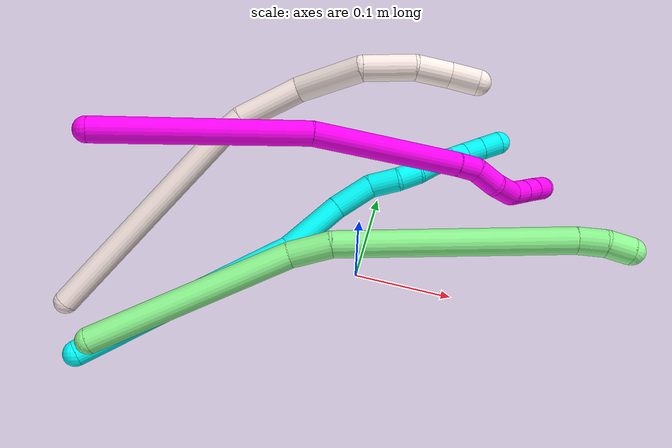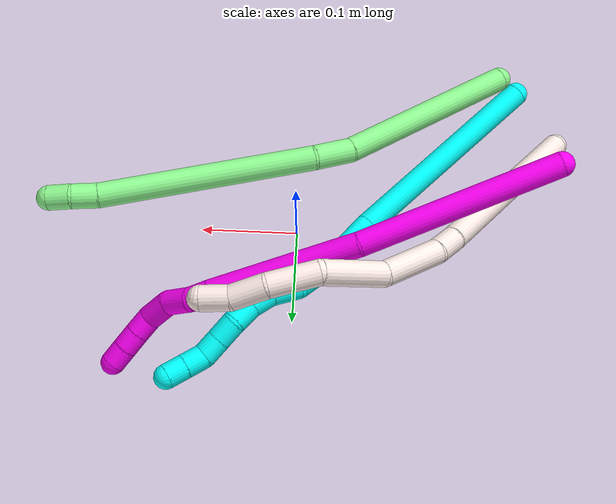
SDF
<sdf version="1.7">
 <world name="default">
  <model name="3">
   <static>0</static>
   <link name="3">
    <collision name="collision-cylinder-e_1_1_4">
     <pose>0.063315 0.076719 0.054609 -0.952186 0.591928 -0.311913</pose>
     <geometry><cylinder><radius>0.0125</radius><length>0.226952</length></cylinder></geometry>
     <surface>
      <friction><ode><mu>1.16</mu><mu2>1.16</mu2><slip1>0</slip1><slip2>0</slip2></ode></friction>
      <contact><ode><kp>1e+06</kp><kd>1</kd><max_vel>0</max_vel><min_depth>0.001</min_depth></ode></contact>
     </surface>
    </collision>
    <visual name="visual-cylinder-e_1_1_4">
     <pose>0.063315 0.076719 0.054609 -0.952186 0.591928 -0.311913</pose>
     <geometry><cylinder><radius>0.0125</radius><length>0.226952</length></cylinder></geometry>
     <material><ambient>0.003922 1 0.996078 1</ambient></material>
    </visual>
    <collision name="collision-cylinder-e_2_4_5">
     <pose>0.146193 0.169407 0.131098 -0.630515 0.62547 -0.210132</pose>
     <geometry><cylinder><radius>0.0125</radius><length>0.066824</length></cylinder></geometry>
     <surface>
      <friction><ode><mu>1.16</mu><mu2>1.16</mu2><slip1>0</slip1><slip2>0</slip2></ode></friction>
      <contact><ode><kp>1e+06</kp><kd>1</kd><max_vel>0</max_vel><min_depth>0.001</min_depth></ode></contact>
     </surface>
    </collision>
    <visual name="visual-cylinder-e_2_4_5">
     <pose>0.146193 0.169407 0.131098 -0.630515 0.62547 -0.210132</pose>
     <geometry><cylinder><radius>0.0125</radius><length>0.066824</length></cylinder></geometry>
     <material><ambient>0.003922 1 0.996078 1</ambient></material>
    </visual>
    <collision name="collision-cylinder-e_3_5_6">
     <pose>0.180475 0.195434 0.164416 -0.721158 0.76829 -0.302511</pose>
     <geometry><cylinder><radius>0.0125</radius><length>0.042366</length></cylinder></geometry>
     <surface>
      <friction><ode><mu>1.16</mu><mu2>1.16</mu2><slip1>0</slip1><slip2>0</slip2></ode></friction>
      <contact><ode><kp>1e+06</kp><kd>1</kd><max_vel>0</max_vel><min_depth>0.001</min_depth></ode></contact>
     </surface>
    </collision>
    <visual name="visual-cylinder-e_3_5_6">
     <pose>0.180475 0.195434 0.164416 -0.721158 0.76829 -0.302511</pose>
     <geometry><cylinder><radius>0.0125</radius><length>0.042366</length></cylinder></geometry>
     <material><ambient>0.003922 1 0.996078 1</ambient></material>
    </visual>
    <collision name="collision-cylinder-e_4_6_7">
     <pose>0.208153 0.212789 0.178913 -1.17419 1.02265 -0.714612</pose>
     <geometry><cylinder><radius>0.0125</radius><length>0.030365</length></cylinder></geometry>
     <surface>
      <friction><ode><mu>1.16</mu><mu2>1.16</mu2><slip1>0</slip1><slip2>0</slip2></ode></friction>
      <contact><ode><kp>1e+06</kp><kd>1</kd><max_vel>0</max_vel><min_depth>0.001</min_depth></ode></contact>
     </surface>
    </collision>
    <visual name="visual-cylinder-e_4_6_7">
     <pose>0.208153 0.212789 0.178913 -1.17419 1.02265 -0.714612</pose>
     <geometry><cylinder><radius>0.0125</radius><length>0.030365</length></cylinder></geometry>
     <material><ambient>0.003922 1 0.996078 1</ambient></material>
    </visual>
    <collision name="collision-cylinder-e_5_7_8">
     <pose>0.228908 0.227432 0.18612 -1.05644 0.745933 -0.448951</pose>
     <geometry><cylinder><radius>0.0125</radius><length>0.022977</length></cylinder></geometry>
     <surface>
      <friction><ode><mu>1.16</mu><mu2>1.16</mu2><slip1>0</slip1><slip2>0</slip2></ode></friction>
      <contact><ode><kp>1e+06</kp><kd>1</kd><max_vel>0</max_vel><min_depth>0.001</min_depth></ode></contact>
     </surface>
    </collision>
    <visual name="visual-cylinder-e_5_7_8">
     <pose>0.228908 0.227432 0.18612 -1.05644 0.745933 -0.448951</pose>
     <geometry><cylinder><radius>0.0125</radius><length>0.022977</length></cylinder></geometry>
     <material><ambient>0.003922 1 0.996078 1</ambient></material>
    </visual>
    <collision name="collision-cylinder-e_6_8_9">
     <pose>0.242688 0.242869 0.196288 -0.931381 0.535579 -0.274054</pose>
     <geometry><cylinder><radius>0.0125</radius><length>0.023448</length></cylinder></geometry>
     <surface>
      <friction><ode><mu>1.16</mu><mu2>1.16</mu2><slip1>0</slip1><slip2>0</slip2></ode></friction>
      <contact><ode><kp>1e+06</kp><kd>1</kd><max_vel>0</max_vel><min_depth>0.001</min_depth></ode></contact>
     </surface>
    </collision>
    <visual name="visual-cylinder-e_6_8_9">
     <pose>0.242688 0.242869 0.196288 -0.931381 0.535579 -0.274054</pose>
     <geometry><cylinder><radius>0.0125</radius><length>0.023448</length></cylinder></geometry>
     <material><ambient>0.003922 1 0.996078 1</ambient></material>
    </visual>
    <collision name="collision-cylinder-e_7_9_10">
     <pose>0.252381 0.261151 0.206353 -1.19261 0.326224 -0.22248</pose>
     <geometry><cylinder><radius>0.0125</radius><length>0.023154</length></cylinder></geometry>
     <surface>
      <friction><ode><mu>1.16</mu><mu2>1.16</mu2><slip1>0</slip1><slip2>0</slip2></ode></friction>
      <contact><ode><kp>1e+06</kp><kd>1</kd><max_vel>0</max_vel><min_depth>0.001</min_depth></ode></contact>
     </surface>
    </collision>
    <visual name="visual-cylinder-e_7_9_10">
     <pose>0.252381 0.261151 0.206353 -1.19261 0.326224 -0.22248</pose>
     <geometry><cylinder><radius>0.0125</radius><length>0.023154</length></cylinder></geometry>
     <material><ambient>0.003922 1 0.996078 1</ambient></material>
    </visual>
    <collision name="collision-cylinder-e_8_10_11">
     <pose>0.260038 0.280184 0.214869 -1.10309 0.379118 -0.234994</pose>
     <geometry><cylinder><radius>0.0125</radius><length>0.021326</length></cylinder></geometry>
     <surface>
      <friction><ode><mu>1.16</mu><mu2>1.16</mu2><slip1>0</slip1><slip2>0</slip2></ode></friction>
      <contact><ode><kp>1e+06</kp><kd>1</kd><max_vel>0</max_vel><min_depth>0.001</min_depth></ode></contact>
     </surface>
    </collision>
    <visual name="visual-cylinder-e_8_10_11">
     <pose>0.260038 0.280184 0.214869 -1.10309 0.379118 -0.234994</pose>
     <geometry><cylinder><radius>0.0125</radius><length>0.021326</length></cylinder></geometry>
     <material><ambient>0.003922 1 0.996078 1</ambient></material>
    </visual>
    <collision name="collision-cylinder-e_9_11_12">
     <pose>0.271767 0.295766 0.22308 -1.06353 0.790086 -0.481089</pose>
     <geometry><cylinder><radius>0.0125</radius><length>0.021911</length></cylinder></geometry>
     <surface>
      <friction><ode><mu>1.16</mu><mu2>1.16</mu2><slip1>0</slip1><slip2>0</slip2></ode></friction>
      <contact><ode><kp>1e+06</kp><kd>1</kd><max_vel>0</max_vel><min_depth>0.001</min_depth></ode></contact>
     </surface>
    </collision>
    <visual name="visual-cylinder-e_9_11_12">
     <pose>0.271767 0.295766 0.22308 -1.06353 0.790086 -0.481089</pose>
     <geometry><cylinder><radius>0.0125</radius><length>0.021911</length></cylinder></geometry>
     <material><ambient>0.003922 1 0.996078 1</ambient></material>
    </visual>
    <collision name="collision-cylinder-e_10_12_2">
     <pose>0.286908 0.308884 0.230298 -1.07231 0.791977 -0.486994</pose>
     <geometry><cylinder><radius>0.0125</radius><length>0.020677</length></cylinder></geometry>
     <surface>
      <friction><ode><mu>1.16</mu><mu2>1.16</mu2><slip1>0</slip1><slip2>0</slip2></ode></friction>
      <contact><ode><kp>1e+06</kp><kd>1</kd><max_vel>0</max_vel><min_depth>0.001</min_depth></ode></contact>
     </surface>
    </collision>
    <visual name="visual-cylinder-e_10_12_2">
     <pose>0.286908 0.308884 0.230298 -1.07231 0.791977 -0.486994</pose>
     <geometry><cylinder><radius>0.0125</radius><length>0.020677</length></cylinder></geometry>
     <material><ambient>0.003922 1 0.996078 1</ambient></material>
    </visual>
    <collision name="collision-sphere-2">
     <pose>0.294267 0.315262 0.23377 0 -0 0</pose>
     <geometry><sphere><radius>0.0125</radius></sphere></geometry>
     <surface>
      <friction><ode><mu>1.16</mu><mu2>1.16</mu2><slip1>0</slip1><slip2>0</slip2></ode></friction>
      <contact><ode><kp>1e+06</kp><kd>1</kd><max_vel>0</max_vel><min_depth>0.001</min_depth></ode></contact>
     </surface>
    </collision>
    <visual name="visual-sphere-2">
     <pose>0.294267 0.315262 0.23377 0 -0 0</pose>
     <geometry><sphere><radius>0.0125</radius></sphere></geometry>
     <material><ambient>0.003922 1 0.996078 1</ambient></material>
    </visual>
    <collision name="collision-sphere-12">
     <pose>0.27955 0.302505 0.226826 0 -0 0</pose>
     <geometry><sphere><radius>0.0125</radius></sphere></geometry>
     <surface>
      <friction><ode><mu>1.16</mu><mu2>1.16</mu2><slip1>0</slip1><slip2>0</slip2></ode></friction>
      <contact><ode><kp>1e+06</kp><kd>1</kd><max_vel>0</max_vel><min_depth>0.001</min_depth></ode></contact>
     </surface>
    </collision>
    <visual name="visual-sphere-12">
     <pose>0.27955 0.302505 0.226826 0 -0 0</pose>
     <geometry><sphere><radius>0.0125</radius></sphere></geometry>
     <material><ambient>0.003922 1 0.996078 1</ambient></material>
    </visual>
    <collision name="collision-sphere-11">
     <pose>0.263984 0.289027 0.219335 0 -0 0</pose>
     <geometry><sphere><radius>0.0125</radius></sphere></geometry>
     <surface>
      <friction><ode><mu>1.16</mu><mu2>1.16</mu2><slip1>0</slip1><slip2>0</slip2></ode></friction>
      <contact><ode><kp>1e+06</kp><kd>1</kd><max_vel>0</max_vel><min_depth>0.001</min_depth></ode></contact>
     </surface>
    </collision>
    <visual name="visual-sphere-11">
     <pose>0.263984 0.289027 0.219335 0 -0 0</pose>
     <geometry><sphere><radius>0.0125</radius></sphere></geometry>
     <material><ambient>0.003922 1 0.996078 1</ambient></material>
    </visual>
    <collision name="collision-sphere-10">
     <pose>0.256091 0.271342 0.210403 0 -0 0</pose>
     <geometry><sphere><radius>0.0125</radius></sphere></geometry>
     <surface>
      <friction><ode><mu>1.16</mu><mu2>1.16</mu2><slip1>0</slip1><slip2>0</slip2></ode></friction>
      <contact><ode><kp>1e+06</kp><kd>1</kd><max_vel>0</max_vel><min_depth>0.001</min_depth></ode></contact>
     </surface>
    </collision>
    <visual name="visual-sphere-10">
     <pose>0.256091 0.271342 0.210403 0 -0 0</pose>
     <geometry><sphere><radius>0.0125</radius></sphere></geometry>
     <material><ambient>0.003922 1 0.996078 1</ambient></material>
    </visual>
    <collision name="collision-sphere-9">
     <pose>0.248671 0.250959 0.202304 0 -0 0</pose>
     <geometry><sphere><radius>0.0125</radius></sphere></geometry>
     <surface>
      <friction><ode><mu>1.16</mu><mu2>1.16</mu2><slip1>0</slip1><slip2>0</slip2></ode></friction>
      <contact><ode><kp>1e+06</kp><kd>1</kd><max_vel>0</max_vel><min_depth>0.001</min_depth></ode></contact>
     </surface>
    </collision>
    <visual name="visual-sphere-9">
     <pose>0.248671 0.250959 0.202304 0 -0 0</pose>
     <geometry><sphere><radius>0.0125</radius></sphere></geometry>
     <material><ambient>0.003922 1 0.996078 1</ambient></material>
    </visual>
    <collision name="collision-sphere-4">
     <pose>0.126631 0.153438 0.109219 0 -0 0</pose>
     <geometry><sphere><radius>0.0125</radius></sphere></geometry>
     <surface>
      <friction><ode><mu>1.16</mu><mu2>1.16</mu2><slip1>0</slip1><slip2>0</slip2></ode></friction>
      <contact><ode><kp>1e+06</kp><kd>1</kd><max_vel>0</max_vel><min_depth>0.001</min_depth></ode></contact>
     </surface>
    </collision>
    <visual name="visual-sphere-4">
     <pose>0.126631 0.153438 0.109219 0 -0 0</pose>
     <geometry><sphere><radius>0.0125</radius></sphere></geometry>
     <material><ambient>0.003922 1 0.996078 1</ambient></material>
    </visual>
    <collision name="collision-sphere-1">
     <geometry><sphere><radius>0.0125</radius></sphere></geometry>
     <surface>
      <friction><ode><mu>1.16</mu><mu2>1.16</mu2><slip1>0</slip1><slip2>0</slip2></ode></friction>
      <contact><ode><kp>1e+06</kp><kd>1</kd><max_vel>0</max_vel><min_depth>0.001</min_depth></ode></contact>
     </surface>
    </collision>
    <visual name="visual-sphere-1">
     <geometry><sphere><radius>0.0125</radius></sphere></geometry>
     <material><ambient>0.003922 1 0.996078 1</ambient></material>
    </visual>
    <collision name="collision-sphere-8">
     <pose>0.236705 0.234778 0.190272 0 -0 0</pose>
     <geometry><sphere><radius>0.0125</radius></sphere></geometry>
     <surface>
      <friction><ode><mu>1.16</mu><mu2>1.16</mu2><slip1>0</slip1><slip2>0</slip2></ode></friction>
      <contact><ode><kp>1e+06</kp><kd>1</kd><max_vel>0</max_vel><min_depth>0.001</min_depth></ode></contact>
     </surface>
    </collision>
    <visual name="visual-sphere-8">
     <pose>0.236705 0.234778 0.190272 0 -0 0</pose>
     <geometry><sphere><radius>0.0125</radius></sphere></geometry>
     <material><ambient>0.003922 1 0.996078 1</ambient></material>
    </visual>
    <collision name="collision-sphere-5">
     <pose>0.165755 0.185376 0.152976 0 -0 0</pose>
     <geometry><sphere><radius>0.0125</radius></sphere></geometry>
     <surface>
      <friction><ode><mu>1.16</mu><mu2>1.16</mu2><slip1>0</slip1><slip2>0</slip2></ode></friction>
      <contact><ode><kp>1e+06</kp><kd>1</kd><max_vel>0</max_vel><min_depth>0.001</min_depth></ode></contact>
     </surface>
    </collision>
    <visual name="visual-sphere-5">
     <pose>0.165755 0.185376 0.152976 0 -0 0</pose>
     <geometry><sphere><radius>0.0125</radius></sphere></geometry>
     <material><ambient>0.003922 1 0.996078 1</ambient></material>
    </visual>
    <collision name="collision-sphere-6">
     <pose>0.195195 0.205491 0.175857 0 -0 0</pose>
     <geometry><sphere><radius>0.0125</radius></sphere></geometry>
     <surface>
      <friction><ode><mu>1.16</mu><mu2>1.16</mu2><slip1>0</slip1><slip2>0</slip2></ode></friction>
      <contact><ode><kp>1e+06</kp><kd>1</kd><max_vel>0</max_vel><min_depth>0.001</min_depth></ode></contact>
     </surface>
    </collision>
    <visual name="visual-sphere-6">
     <pose>0.195195 0.205491 0.175857 0 -0 0</pose>
     <geometry><sphere><radius>0.0125</radius></sphere></geometry>
     <material><ambient>0.003922 1 0.996078 1</ambient></material>
    </visual>
    <collision name="collision-sphere-7">
     <pose>0.221111 0.220086 0.181969 0 -0 0</pose>
     <geometry><sphere><radius>0.0125</radius></sphere></geometry>
     <surface>
      <friction><ode><mu>1.16</mu><mu2>1.16</mu2><slip1>0</slip1><slip2>0</slip2></ode></friction>
      <contact><ode><kp>1e+06</kp><kd>1</kd><max_vel>0</max_vel><min_depth>0.001</min_depth></ode></contact>
     </surface>
    </collision>
    <visual name="visual-sphere-7">
     <pose>0.221111 0.220086 0.181969 0 -0 0</pose>
     <geometry><sphere><radius>0.0125</radius></sphere></geometry>
     <material><ambient>0.003922 1 0.996078 1</ambient></material>
    </visual>
    <inertial>
     <pose>0.144663 0.158565 0.122883 0 -0 0</pose>
     <mass>0.5</mass>
     <inertia>
      <ixx>0.000575</ixx>
      <ixy>0</ixy>
      <ixz>0</ixz>
      <iyy>0.000484</iyy>
      <iyz>0</iyz>
      <izz>-0.001252</izz>
     </inertia>
    </inertial>
   </link>
   <pose>-0.22955 -0.165625 0.027473 -1.13043 -0.614636 0.000532</pose>
  </model>
  <model name="10">
   <static>0</static>
   <link name="10">
    <collision name="collision-cylinder-e_1_1_4">
     <pose>0.097477 0.034975 -0.003605 -1.67352 1.22462 -1.32297</pose>
     <geometry><cylinder><radius>0.0125</radius><length>0.20725</length></cylinder></geometry>
     <surface>
      <friction><ode><mu>1.16</mu><mu2>1.16</mu2><slip1>0</slip1><slip2>0</slip2></ode></friction>
      <contact><ode><kp>1e+06</kp><kd>1</kd><max_vel>0</max_vel><min_depth>0.001</min_depth></ode></contact>
     </surface>
    </collision>
    <visual name="visual-cylinder-e_1_1_4">
     <pose>0.097477 0.034975 -0.003605 -1.67352 1.22462 -1.32297</pose>
     <geometry><cylinder><radius>0.0125</radius><length>0.20725</length></cylinder></geometry>
     <material><ambient>1 0 0.964706 1</ambient></material>
    </visual>
    <collision name="collision-cylinder-e_2_4_5">
     <pose>0.26724 0.09354 0.00425 -1.11853 1.22275 -0.826925</pose>
     <geometry><cylinder><radius>0.0125</radius><length>0.153792</length></cylinder></geometry>
     <surface>
      <friction><ode><mu>1.16</mu><mu2>1.16</mu2><slip1>0</slip1><slip2>0</slip2></ode></friction>
      <contact><ode><kp>1e+06</kp><kd>1</kd><max_vel>0</max_vel><min_depth>0.001</min_depth></ode></contact>
     </surface>
    </collision>
    <visual name="visual-cylinder-e_2_4_5">
     <pose>0.26724 0.09354 0.00425 -1.11853 1.22275 -0.826925</pose>
     <geometry><cylinder><radius>0.0125</radius><length>0.153792</length></cylinder></geometry>
     <material><ambient>1 0 0.964706 1</ambient></material>
    </visual>
    <collision name="collision-cylinder-e_3_5_6">
     <pose>0.350157 0.119619 0.017878 -0.854841 1.26973 -0.647434</pose>
     <geometry><cylinder><radius>0.0125</radius><length>0.022265</length></cylinder></geometry>
     <surface>
      <friction><ode><mu>1.16</mu><mu2>1.16</mu2><slip1>0</slip1><slip2>0</slip2></ode></friction>
      <contact><ode><kp>1e+06</kp><kd>1</kd><max_vel>0</max_vel><min_depth>0.001</min_depth></ode></contact>
     </surface>
    </collision>
    <visual name="visual-cylinder-e_3_5_6">
     <pose>0.350157 0.119619 0.017878 -0.854841 1.26973 -0.647434</pose>
     <geometry><cylinder><radius>0.0125</radius><length>0.022265</length></cylinder></geometry>
     <material><ambient>1 0 0.964706 1</ambient></material>
    </visual>
    <collision name="collision-cylinder-e_4_6_7">
     <pose>0.372203 0.124599 0.027405 -0.326085 0.973134 -0.173602</pose>
     <geometry><cylinder><radius>0.0125</radius><length>0.027617</length></cylinder></geometry>
     <surface>
      <friction><ode><mu>1.16</mu><mu2>1.16</mu2><slip1>0</slip1><slip2>0</slip2></ode></friction>
      <contact><ode><kp>1e+06</kp><kd>1</kd><max_vel>0</max_vel><min_depth>0.001</min_depth></ode></contact>
     </surface>
    </collision>
    <visual name="visual-cylinder-e_4_6_7">
     <pose>0.372203 0.124599 0.027405 -0.326085 0.973134 -0.173602</pose>
     <geometry><cylinder><radius>0.0125</radius><length>0.027617</length></cylinder></geometry>
     <material><ambient>1 0 0.964706 1</ambient></material>
    </visual>
    <collision name="collision-cylinder-e_5_7_8">
     <pose>0.397311 0.12507 0.038969 0.447542 1.24259 0.323001</pose>
     <geometry><cylinder><radius>0.0125</radius><length>0.02893</length></cylinder></geometry>
     <surface>
      <friction><ode><mu>1.16</mu><mu2>1.16</mu2><slip1>0</slip1><slip2>0</slip2></ode></friction>
      <contact><ode><kp>1e+06</kp><kd>1</kd><max_vel>0</max_vel><min_depth>0.001</min_depth></ode></contact>
     </surface>
    </collision>
    <visual name="visual-cylinder-e_5_7_8">
     <pose>0.397311 0.12507 0.038969 0.447542 1.24259 0.323001</pose>
     <geometry><cylinder><radius>0.0125</radius><length>0.02893</length></cylinder></geometry>
     <material><ambient>1 0 0.964706 1</ambient></material>
    </visual>
    <collision name="collision-cylinder-e_6_8_9">
     <pose>0.420814 0.12161 0.041822 2.32322 1.37206 2.16733</pose>
     <geometry><cylinder><radius>0.0125</radius><length>0.020015</length></cylinder></geometry>
     <surface>
      <friction><ode><mu>1.16</mu><mu2>1.16</mu2><slip1>0</slip1><slip2>0</slip2></ode></friction>
      <contact><ode><kp>1e+06</kp><kd>1</kd><max_vel>0</max_vel><min_depth>0.001</min_depth></ode></contact>
     </surface>
    </collision>
    <visual name="visual-cylinder-e_6_8_9">
     <pose>0.420814 0.12161 0.041822 2.32322 1.37206 2.16733</pose>
     <geometry><cylinder><radius>0.0125</radius><length>0.020015</length></cylinder></geometry>
     <material><ambient>1 0 0.964706 1</ambient></material>
    </visual>
    <collision name="collision-cylinder-e_7_9_10">
     <pose>0.440439 0.118512 0.039079 2.27002 1.35379 2.09119</pose>
     <geometry><cylinder><radius>0.0125</radius><length>0.0201</length></cylinder></geometry>
     <surface>
      <friction><ode><mu>1.16</mu><mu2>1.16</mu2><slip1>0</slip1><slip2>0</slip2></ode></friction>
      <contact><ode><kp>1e+06</kp><kd>1</kd><max_vel>0</max_vel><min_depth>0.001</min_depth></ode></contact>
     </surface>
    </collision>
    <visual name="visual-cylinder-e_7_9_10">
     <pose>0.440439 0.118512 0.039079 2.27002 1.35379 2.09119</pose>
     <geometry><cylinder><radius>0.0125</radius><length>0.0201</length></cylinder></geometry>
     <material><ambient>1 0 0.964706 1</ambient></material>
    </visual>
    <collision name="collision-cylinder-e_8_10_2">
     <pose>0.460045 0.11508 0.03655 2.14049 1.35873 1.9509</pose>
     <geometry><cylinder><radius>0.0125</radius><length>0.020032</length></cylinder></geometry>
     <surface>
      <friction><ode><mu>1.16</mu><mu2>1.16</mu2><slip1>0</slip1><slip2>0</slip2></ode></friction>
      <contact><ode><kp>1e+06</kp><kd>1</kd><max_vel>0</max_vel><min_depth>0.001</min_depth></ode></contact>
     </surface>
    </collision>
    <visual name="visual-cylinder-e_8_10_2">
     <pose>0.460045 0.11508 0.03655 2.14049 1.35873 1.9509</pose>
     <geometry><cylinder><radius>0.0125</radius><length>0.020032</length></cylinder></geometry>
     <material><ambient>1 0 0.964706 1</ambient></material>
    </visual>
    <collision name="collision-sphere-2">
     <pose>0.469837 0.113305 0.035413 0 -0 0</pose>
     <geometry><sphere><radius>0.0125</radius></sphere></geometry>
     <surface>
      <friction><ode><mu>1.16</mu><mu2>1.16</mu2><slip1>0</slip1><slip2>0</slip2></ode></friction>
      <contact><ode><kp>1e+06</kp><kd>1</kd><max_vel>0</max_vel><min_depth>0.001</min_depth></ode></contact>
     </surface>
    </collision>
    <visual name="visual-sphere-2">
     <pose>0.469837 0.113305 0.035413 0 -0 0</pose>
     <geometry><sphere><radius>0.0125</radius></sphere></geometry>
     <material><ambient>1 0 0.964706 1</ambient></material>
    </visual>
    <collision name="collision-sphere-10">
     <pose>0.450254 0.116855 0.037687 0 -0 0</pose>
     <geometry><sphere><radius>0.0125</radius></sphere></geometry>
     <surface>
      <friction><ode><mu>1.16</mu><mu2>1.16</mu2><slip1>0</slip1><slip2>0</slip2></ode></friction>
      <contact><ode><kp>1e+06</kp><kd>1</kd><max_vel>0</max_vel><min_depth>0.001</min_depth></ode></contact>
     </surface>
    </collision>
    <visual name="visual-sphere-10">
     <pose>0.450254 0.116855 0.037687 0 -0 0</pose>
     <geometry><sphere><radius>0.0125</radius></sphere></geometry>
     <material><ambient>1 0 0.964706 1</ambient></material>
    </visual>
    <collision name="collision-sphere-9">
     <pose>0.430625 0.120168 0.040472 0 -0 0</pose>
     <geometry><sphere><radius>0.0125</radius></sphere></geometry>
     <surface>
      <friction><ode><mu>1.16</mu><mu2>1.16</mu2><slip1>0</slip1><slip2>0</slip2></ode></friction>
      <contact><ode><kp>1e+06</kp><kd>1</kd><max_vel>0</max_vel><min_depth>0.001</min_depth></ode></contact>
     </surface>
    </collision>
    <visual name="visual-sphere-9">
     <pose>0.430625 0.120168 0.040472 0 -0 0</pose>
     <geometry><sphere><radius>0.0125</radius></sphere></geometry>
     <material><ambient>1 0 0.964706 1</ambient></material>
    </visual>
    <collision name="collision-sphere-4">
     <pose>0.194955 0.06995 -0.007211 0 -0 0</pose>
     <geometry><sphere><radius>0.0125</radius></sphere></geometry>
     <surface>
      <friction><ode><mu>1.16</mu><mu2>1.16</mu2><slip1>0</slip1><slip2>0</slip2></ode></friction>
      <contact><ode><kp>1e+06</kp><kd>1</kd><max_vel>0</max_vel><min_depth>0.001</min_depth></ode></contact>
     </surface>
    </collision>
    <visual name="visual-sphere-4">
     <pose>0.194955 0.06995 -0.007211 0 -0 0</pose>
     <geometry><sphere><radius>0.0125</radius></sphere></geometry>
     <material><ambient>1 0 0.964706 1</ambient></material>
    </visual>
    <collision name="collision-sphere-1">
     <geometry><sphere><radius>0.0125</radius></sphere></geometry>
     <surface>
      <friction><ode><mu>1.16</mu><mu2>1.16</mu2><slip1>0</slip1><slip2>0</slip2></ode></friction>
      <contact><ode><kp>1e+06</kp><kd>1</kd><max_vel>0</max_vel><min_depth>0.001</min_depth></ode></contact>
     </surface>
    </collision>
    <visual name="visual-sphere-1">
     <geometry><sphere><radius>0.0125</radius></sphere></geometry>
     <material><ambient>1 0 0.964706 1</ambient></material>
    </visual>
    <collision name="collision-sphere-8">
     <pose>0.411004 0.123052 0.043173 0 -0 0</pose>
     <geometry><sphere><radius>0.0125</radius></sphere></geometry>
     <surface>
      <friction><ode><mu>1.16</mu><mu2>1.16</mu2><slip1>0</slip1><slip2>0</slip2></ode></friction>
      <contact><ode><kp>1e+06</kp><kd>1</kd><max_vel>0</max_vel><min_depth>0.001</min_depth></ode></contact>
     </surface>
    </collision>
    <visual name="visual-sphere-8">
     <pose>0.411004 0.123052 0.043173 0 -0 0</pose>
     <geometry><sphere><radius>0.0125</radius></sphere></geometry>
     <material><ambient>1 0 0.964706 1</ambient></material>
    </visual>
    <collision name="collision-sphere-5">
     <pose>0.339525 0.117129 0.015711 0 -0 0</pose>
     <geometry><sphere><radius>0.0125</radius></sphere></geometry>
     <surface>
      <friction><ode><mu>1.16</mu><mu2>1.16</mu2><slip1>0</slip1><slip2>0</slip2></ode></friction>
      <contact><ode><kp>1e+06</kp><kd>1</kd><max_vel>0</max_vel><min_depth>0.001</min_depth></ode></contact>
     </surface>
    </collision>
    <visual name="visual-sphere-5">
     <pose>0.339525 0.117129 0.015711 0 -0 0</pose>
     <geometry><sphere><radius>0.0125</radius></sphere></geometry>
     <material><ambient>1 0 0.964706 1</ambient></material>
    </visual>
    <collision name="collision-sphere-6">
     <pose>0.360789 0.12211 0.020045 0 -0 0</pose>
     <geometry><sphere><radius>0.0125</radius></sphere></geometry>
     <surface>
      <friction><ode><mu>1.16</mu><mu2>1.16</mu2><slip1>0</slip1><slip2>0</slip2></ode></friction>
      <contact><ode><kp>1e+06</kp><kd>1</kd><max_vel>0</max_vel><min_depth>0.001</min_depth></ode></contact>
     </surface>
    </collision>
    <visual name="visual-sphere-6">
     <pose>0.360789 0.12211 0.020045 0 -0 0</pose>
     <geometry><sphere><radius>0.0125</radius></sphere></geometry>
     <material><ambient>1 0 0.964706 1</ambient></material>
    </visual>
    <collision name="collision-sphere-7">
     <pose>0.383618 0.127088 0.034766 0 -0 0</pose>
     <geometry><sphere><radius>0.0125</radius></sphere></geometry>
     <surface>
      <friction><ode><mu>1.16</mu><mu2>1.16</mu2><slip1>0</slip1><slip2>0</slip2></ode></friction>
      <contact><ode><kp>1e+06</kp><kd>1</kd><max_vel>0</max_vel><min_depth>0.001</min_depth></ode></contact>
     </surface>
    </collision>
    <visual name="visual-sphere-7">
     <pose>0.383618 0.127088 0.034766 0 -0 0</pose>
     <geometry><sphere><radius>0.0125</radius></sphere></geometry>
     <material><ambient>1 0 0.964706 1</ambient></material>
    </visual>
    <inertial>
     <pose>0.234724 0.076956 0.009087 0 -0 0</pose>
     <mass>0.5</mass>
     <inertia>
      <ixx>-0.000151</ixx>
      <ixy>0</ixy>
      <ixz>0</ixz>
      <iyy>0.000642</iyy>
      <iyz>0</iyz>
      <izz>-0.001352</izz>
     </inertia>
    </inertial>
   </link>
   <pose>-0.254026 -0.00879 0.162753 2.29449 0.451787 0.589077</pose>
  </model>
  <model name="11">
   <static>0</static>
   <link name="11">
    <collision name="collision-cylinder-e_1_1_4">
     <pose>0.09467 0.036672 0.051691 -0.617045 0.980863 -0.337105</pose>
     <geometry><cylinder><radius>0.0125</radius><length>0.227853</length></cylinder></geometry>
     <surface>
      <friction><ode><mu>1.16</mu><mu2>1.16</mu2><slip1>0</slip1><slip2>0</slip2></ode></friction>
      <contact><ode><kp>1e+06</kp><kd>1</kd><max_vel>0</max_vel><min_depth>0.001</min_depth></ode></contact>
     </surface>
    </collision>
    <visual name="visual-cylinder-e_1_1_4">
     <pose>0.09467 0.036672 0.051691 -0.617045 0.980863 -0.337105</pose>
     <geometry><cylinder><radius>0.0125</radius><length>0.227853</length></cylinder></geometry>
     <material><ambient>1 0.933333 0.909804 1</ambient></material>
    </visual>
    <collision name="collision-cylinder-e_2_4_5">
     <pose>0.200362 0.076844 0.110743 -0.443707 0.934004 -0.226488</pose>
     <geometry><cylinder><radius>0.0125</radius><length>0.027415</length></cylinder></geometry>
     <surface>
      <friction><ode><mu>1.16</mu><mu2>1.16</mu2><slip1>0</slip1><slip2>0</slip2></ode></friction>
      <contact><ode><kp>1e+06</kp><kd>1</kd><max_vel>0</max_vel><min_depth>0.001</min_depth></ode></contact>
     </surface>
    </collision>
    <visual name="visual-cylinder-e_2_4_5">
     <pose>0.200362 0.076844 0.110743 -0.443707 0.934004 -0.226488</pose>
     <geometry><cylinder><radius>0.0125</radius><length>0.027415</length></cylinder></geometry>
     <material><ambient>1 0.933333 0.909804 1</ambient></material>
    </visual>
    <collision name="collision-cylinder-e_3_5_6">
     <pose>0.232276 0.086316 0.141447 -0.250504 0.714357 -0.093907</pose>
     <geometry><cylinder><radius>0.0125</radius><length>0.063785</length></cylinder></geometry>
     <surface>
      <friction><ode><mu>1.16</mu><mu2>1.16</mu2><slip1>0</slip1><slip2>0</slip2></ode></friction>
      <contact><ode><kp>1e+06</kp><kd>1</kd><max_vel>0</max_vel><min_depth>0.001</min_depth></ode></contact>
     </surface>
    </collision>
    <visual name="visual-cylinder-e_3_5_6">
     <pose>0.232276 0.086316 0.141447 -0.250504 0.714357 -0.093907</pose>
     <geometry><cylinder><radius>0.0125</radius><length>0.063785</length></cylinder></geometry>
     <material><ambient>1 0.933333 0.909804 1</ambient></material>
    </visual>
    <collision name="collision-cylinder-e_4_6_7">
     <pose>0.265183 0.10443 0.193832 -0.395982 0.364585 -0.07393</pose>
     <geometry><cylinder><radius>0.0125</radius><length>0.067384</length></cylinder></geometry>
     <surface>
      <friction><ode><mu>1.16</mu><mu2>1.16</mu2><slip1>0</slip1><slip2>0</slip2></ode></friction>
      <contact><ode><kp>1e+06</kp><kd>1</kd><max_vel>0</max_vel><min_depth>0.001</min_depth></ode></contact>
     </surface>
    </collision>
    <visual name="visual-cylinder-e_4_6_7">
     <pose>0.265183 0.10443 0.193832 -0.395982 0.364585 -0.07393</pose>
     <geometry><cylinder><radius>0.0125</radius><length>0.067384</length></cylinder></geometry>
     <material><ambient>1 0.933333 0.909804 1</ambient></material>
    </visual>
    <collision name="collision-cylinder-e_5_7_8">
     <pose>0.286917 0.113872 0.245779 0.117328 0.398877 0.023741</pose>
     <geometry><cylinder><radius>0.0125</radius><length>0.050057</length></cylinder></geometry>
     <surface>
      <friction><ode><mu>1.16</mu><mu2>1.16</mu2><slip1>0</slip1><slip2>0</slip2></ode></friction>
      <contact><ode><kp>1e+06</kp><kd>1</kd><max_vel>0</max_vel><min_depth>0.001</min_depth></ode></contact>
     </surface>
    </collision>
    <visual name="visual-cylinder-e_5_7_8">
     <pose>0.286917 0.113872 0.245779 0.117328 0.398877 0.023741</pose>
     <geometry><cylinder><radius>0.0125</radius><length>0.050057</length></cylinder></geometry>
     <material><ambient>1 0.933333 0.909804 1</ambient></material>
    </visual>
    <collision name="collision-cylinder-e_6_8_9">
     <pose>0.302091 0.104728 0.284124 0.395357 0.315082 0.063615</pose>
     <geometry><cylinder><radius>0.0125</radius><length>0.035193</length></cylinder></geometry>
     <surface>
      <friction><ode><mu>1.16</mu><mu2>1.16</mu2><slip1>0</slip1><slip2>0</slip2></ode></friction>
      <contact><ode><kp>1e+06</kp><kd>1</kd><max_vel>0</max_vel><min_depth>0.001</min_depth></ode></contact>
     </surface>
    </collision>
    <visual name="visual-cylinder-e_6_8_9">
     <pose>0.302091 0.104728 0.284124 0.395357 0.315082 0.063615</pose>
     <geometry><cylinder><radius>0.0125</radius><length>0.035193</length></cylinder></geometry>
     <material><ambient>1 0.933333 0.909804 1</ambient></material>
    </visual>
    <collision name="collision-cylinder-e_7_9_2">
     <pose>0.308962 0.096049 0.31347 0.159441 0.100313 0.008021</pose>
     <geometry><cylinder><radius>0.0125</radius><length>0.028313</length></cylinder></geometry>
     <surface>
      <friction><ode><mu>1.16</mu><mu2>1.16</mu2><slip1>0</slip1><slip2>0</slip2></ode></friction>
      <contact><ode><kp>1e+06</kp><kd>1</kd><max_vel>0</max_vel><min_depth>0.001</min_depth></ode></contact>
     </surface>
    </collision>
    <visual name="visual-cylinder-e_7_9_2">
     <pose>0.308962 0.096049 0.31347 0.159441 0.100313 0.008021</pose>
     <geometry><cylinder><radius>0.0125</radius><length>0.028313</length></cylinder></geometry>
     <material><ambient>1 0.933333 0.909804 1</ambient></material>
    </visual>
    <collision name="collision-sphere-2">
     <pose>0.31038 0.093812 0.327377 0 -0 0</pose>
     <geometry><sphere><radius>0.0125</radius></sphere></geometry>
     <surface>
      <friction><ode><mu>1.16</mu><mu2>1.16</mu2><slip1>0</slip1><slip2>0</slip2></ode></friction>
      <contact><ode><kp>1e+06</kp><kd>1</kd><max_vel>0</max_vel><min_depth>0.001</min_depth></ode></contact>
     </surface>
    </collision>
    <visual name="visual-sphere-2">
     <pose>0.31038 0.093812 0.327377 0 -0 0</pose>
     <geometry><sphere><radius>0.0125</radius></sphere></geometry>
     <material><ambient>1 0.933333 0.909804 1</ambient></material>
    </visual>
    <collision name="collision-sphere-9">
     <pose>0.307544 0.098285 0.299563 0 -0 0</pose>
     <geometry><sphere><radius>0.0125</radius></sphere></geometry>
     <surface>
      <friction><ode><mu>1.16</mu><mu2>1.16</mu2><slip1>0</slip1><slip2>0</slip2></ode></friction>
      <contact><ode><kp>1e+06</kp><kd>1</kd><max_vel>0</max_vel><min_depth>0.001</min_depth></ode></contact>
     </surface>
    </collision>
    <visual name="visual-sphere-9">
     <pose>0.307544 0.098285 0.299563 0 -0 0</pose>
     <geometry><sphere><radius>0.0125</radius></sphere></geometry>
     <material><ambient>1 0.933333 0.909804 1</ambient></material>
    </visual>
    <collision name="collision-sphere-4">
     <pose>0.18934 0.073344 0.103381 0 -0 0</pose>
     <geometry><sphere><radius>0.0125</radius></sphere></geometry>
     <surface>
      <friction><ode><mu>1.16</mu><mu2>1.16</mu2><slip1>0</slip1><slip2>0</slip2></ode></friction>
      <contact><ode><kp>1e+06</kp><kd>1</kd><max_vel>0</max_vel><min_depth>0.001</min_depth></ode></contact>
     </surface>
    </collision>
    <visual name="visual-sphere-4">
     <pose>0.18934 0.073344 0.103381 0 -0 0</pose>
     <geometry><sphere><radius>0.0125</radius></sphere></geometry>
     <material><ambient>1 0.933333 0.909804 1</ambient></material>
    </visual>
    <collision name="collision-sphere-1">
     <geometry><sphere><radius>0.0125</radius></sphere></geometry>
     <surface>
      <friction><ode><mu>1.16</mu><mu2>1.16</mu2><slip1>0</slip1><slip2>0</slip2></ode></friction>
      <contact><ode><kp>1e+06</kp><kd>1</kd><max_vel>0</max_vel><min_depth>0.001</min_depth></ode></contact>
     </surface>
    </collision>
    <visual name="visual-sphere-1">
     <geometry><sphere><radius>0.0125</radius></sphere></geometry>
     <material><ambient>1 0.933333 0.909804 1</ambient></material>
    </visual>
    <collision name="collision-sphere-8">
     <pose>0.296638 0.111172 0.268684 0 -0 0</pose>
     <geometry><sphere><radius>0.0125</radius></sphere></geometry>
     <surface>
      <friction><ode><mu>1.16</mu><mu2>1.16</mu2><slip1>0</slip1><slip2>0</slip2></ode></friction>
      <contact><ode><kp>1e+06</kp><kd>1</kd><max_vel>0</max_vel><min_depth>0.001</min_depth></ode></contact>
     </surface>
    </collision>
    <visual name="visual-sphere-8">
     <pose>0.296638 0.111172 0.268684 0 -0 0</pose>
     <geometry><sphere><radius>0.0125</radius></sphere></geometry>
     <material><ambient>1 0.933333 0.909804 1</ambient></material>
    </visual>
    <collision name="collision-sphere-5">
     <pose>0.211383 0.080343 0.118104 0 -0 0</pose>
     <geometry><sphere><radius>0.0125</radius></sphere></geometry>
     <surface>
      <friction><ode><mu>1.16</mu><mu2>1.16</mu2><slip1>0</slip1><slip2>0</slip2></ode></friction>
      <contact><ode><kp>1e+06</kp><kd>1</kd><max_vel>0</max_vel><min_depth>0.001</min_depth></ode></contact>
     </surface>
    </collision>
    <visual name="visual-sphere-5">
     <pose>0.211383 0.080343 0.118104 0 -0 0</pose>
     <geometry><sphere><radius>0.0125</radius></sphere></geometry>
     <material><ambient>1 0.933333 0.909804 1</ambient></material>
    </visual>
    <collision name="collision-sphere-6">
     <pose>0.25317 0.092289 0.16479 0 -0 0</pose>
     <geometry><sphere><radius>0.0125</radius></sphere></geometry>
     <surface>
      <friction><ode><mu>1.16</mu><mu2>1.16</mu2><slip1>0</slip1><slip2>0</slip2></ode></friction>
      <contact><ode><kp>1e+06</kp><kd>1</kd><max_vel>0</max_vel><min_depth>0.001</min_depth></ode></contact>
     </surface>
    </collision>
    <visual name="visual-sphere-6">
     <pose>0.25317 0.092289 0.16479 0 -0 0</pose>
     <geometry><sphere><radius>0.0125</radius></sphere></geometry>
     <material><ambient>1 0.933333 0.909804 1</ambient></material>
    </visual>
    <collision name="collision-sphere-7">
     <pose>0.277197 0.116571 0.222874 0 -0 0</pose>
     <geometry><sphere><radius>0.0125</radius></sphere></geometry>
     <surface>
      <friction><ode><mu>1.16</mu><mu2>1.16</mu2><slip1>0</slip1><slip2>0</slip2></ode></friction>
      <contact><ode><kp>1e+06</kp><kd>1</kd><max_vel>0</max_vel><min_depth>0.001</min_depth></ode></contact>
     </surface>
    </collision>
    <visual name="visual-sphere-7">
     <pose>0.277197 0.116571 0.222874 0 -0 0</pose>
     <geometry><sphere><radius>0.0125</radius></sphere></geometry>
     <material><ambient>1 0.933333 0.909804 1</ambient></material>
    </visual>
    <inertial>
     <pose>0.18698 0.070221 0.136149 0 -0 0</pose>
     <mass>0.5</mass>
     <inertia>
      <ixx>0.000425</ixx>
      <ixy>0</ixy>
      <ixz>0</ixz>
      <iyy>0.000817</iyy>
      <iyz>0</iyz>
      <izz>-0.001168</izz>
     </inertia>
    </inertial>
   </link>
   <pose>-0.272994 -0.112329 0.011685 1.53527 -0.148519 1.46786</pose>
  </model>
  <model name="13">
   <static>0</static>
   <link name="13">
    <collision name="collision-cylinder-e_1_1_4">
     <pose>0.05733 0.065798 -0.042424 -2.14348 0.632066 -1.08069</pose>
     <geometry><cylinder><radius>0.0125</radius><length>0.194072</length></cylinder></geometry>
     <surface>
      <friction><ode><mu>1.16</mu><mu2>1.16</mu2><slip1>0</slip1><slip2>0</slip2></ode></friction>
      <contact><ode><kp>1e+06</kp><kd>1</kd><max_vel>0</max_vel><min_depth>0.001</min_depth></ode></contact>
     </surface>
    </collision>
    <visual name="visual-cylinder-e_1_1_4">
     <pose>0.05733 0.065798 -0.042424 -2.14348 0.632066 -1.08069</pose>
     <geometry><cylinder><radius>0.0125</radius><length>0.194072</length></cylinder></geometry>
     <material><ambient>0.564706 0.984314 0.572549 1</ambient></material>
    </visual>
    <collision name="collision-cylinder-e_2_4_5">
     <pose>0.12976 0.142345 -0.092531 -2.19142 0.851992 -1.44578</pose>
     <geometry><cylinder><radius>0.0125</radius><length>0.040128</length></cylinder></geometry>
     <surface>
      <friction><ode><mu>1.16</mu><mu2>1.16</mu2><slip1>0</slip1><slip2>0</slip2></ode></friction>
      <contact><ode><kp>1e+06</kp><kd>1</kd><max_vel>0</max_vel><min_depth>0.001</min_depth></ode></contact>
     </surface>
    </collision>
    <visual name="visual-cylinder-e_2_4_5">
     <pose>0.12976 0.142345 -0.092531 -2.19142 0.851992 -1.44578</pose>
     <geometry><cylinder><radius>0.0125</radius><length>0.040128</length></cylinder></geometry>
     <material><ambient>0.564706 0.984314 0.572549 1</ambient></material>
    </visual>
    <collision name="collision-cylinder-e_3_5_6">
     <pose>0.228371 0.190638 -0.158278 -2.5676 0.879226 -2.02072</pose>
     <geometry><cylinder><radius>0.0125</radius><length>0.216842</length></cylinder></geometry>
     <surface>
      <friction><ode><mu>1.16</mu><mu2>1.16</mu2><slip1>0</slip1><slip2>0</slip2></ode></friction>
      <contact><ode><kp>1e+06</kp><kd>1</kd><max_vel>0</max_vel><min_depth>0.001</min_depth></ode></contact>
     </surface>
    </collision>
    <visual name="visual-cylinder-e_3_5_6">
     <pose>0.228371 0.190638 -0.158278 -2.5676 0.879226 -2.02072</pose>
     <geometry><cylinder><radius>0.0125</radius><length>0.216842</length></cylinder></geometry>
     <material><ambient>0.564706 0.984314 0.572549 1</ambient></material>
    </visual>
    <collision name="collision-cylinder-e_4_6_7">
     <pose>0.322693 0.231011 -0.222548 -2.71413 1.00804 -2.39175</pose>
     <geometry><cylinder><radius>0.0125</radius><length>0.025564</length></cylinder></geometry>
     <surface>
      <friction><ode><mu>1.16</mu><mu2>1.16</mu2><slip1>0</slip1><slip2>0</slip2></ode></friction>
      <contact><ode><kp>1e+06</kp><kd>1</kd><max_vel>0</max_vel><min_depth>0.001</min_depth></ode></contact>
     </surface>
    </collision>
    <visual name="visual-cylinder-e_4_6_7">
     <pose>0.322693 0.231011 -0.222548 -2.71413 1.00804 -2.39175</pose>
     <geometry><cylinder><radius>0.0125</radius><length>0.025564</length></cylinder></geometry>
     <material><ambient>0.564706 0.984314 0.572549 1</ambient></material>
    </visual>
    <collision name="collision-cylinder-e_5_7_2">
     <pose>0.34243 0.234389 -0.236293 -3.06861 0.868146 -2.98441</pose>
     <geometry><cylinder><radius>0.0125</radius><length>0.023394</length></cylinder></geometry>
     <surface>
      <friction><ode><mu>1.16</mu><mu2>1.16</mu2><slip1>0</slip1><slip2>0</slip2></ode></friction>
      <contact><ode><kp>1e+06</kp><kd>1</kd><max_vel>0</max_vel><min_depth>0.001</min_depth></ode></contact>
     </surface>
    </collision>
    <visual name="visual-cylinder-e_5_7_2">
     <pose>0.34243 0.234389 -0.236293 -3.06861 0.868146 -2.98441</pose>
     <geometry><cylinder><radius>0.0125</radius><length>0.023394</length></cylinder></geometry>
     <material><ambient>0.564706 0.984314 0.572549 1</ambient></material>
    </visual>
    <collision name="collision-sphere-2">
     <pose>0.351356 0.23494 -0.243832 0 -0 0</pose>
     <geometry><sphere><radius>0.0125</radius></sphere></geometry>
     <surface>
      <friction><ode><mu>1.16</mu><mu2>1.16</mu2><slip1>0</slip1><slip2>0</slip2></ode></friction>
      <contact><ode><kp>1e+06</kp><kd>1</kd><max_vel>0</max_vel><min_depth>0.001</min_depth></ode></contact>
     </surface>
    </collision>
    <visual name="visual-sphere-2">
     <pose>0.351356 0.23494 -0.243832 0 -0 0</pose>
     <geometry><sphere><radius>0.0125</radius></sphere></geometry>
     <material><ambient>0.564706 0.984314 0.572549 1</ambient></material>
    </visual>
    <collision name="collision-sphere-7">
     <pose>0.333504 0.233838 -0.228754 0 -0 0</pose>
     <geometry><sphere><radius>0.0125</radius></sphere></geometry>
     <surface>
      <friction><ode><mu>1.16</mu><mu2>1.16</mu2><slip1>0</slip1><slip2>0</slip2></ode></friction>
      <contact><ode><kp>1e+06</kp><kd>1</kd><max_vel>0</max_vel><min_depth>0.001</min_depth></ode></contact>
     </surface>
    </collision>
    <visual name="visual-sphere-7">
     <pose>0.333504 0.233838 -0.228754 0 -0 0</pose>
     <geometry><sphere><radius>0.0125</radius></sphere></geometry>
     <material><ambient>0.564706 0.984314 0.572549 1</ambient></material>
    </visual>
    <collision name="collision-sphere-6">
     <pose>0.311882 0.228184 -0.216343 0 -0 0</pose>
     <geometry><sphere><radius>0.0125</radius></sphere></geometry>
     <surface>
      <friction><ode><mu>1.16</mu><mu2>1.16</mu2><slip1>0</slip1><slip2>0</slip2></ode></friction>
      <contact><ode><kp>1e+06</kp><kd>1</kd><max_vel>0</max_vel><min_depth>0.001</min_depth></ode></contact>
     </surface>
    </collision>
    <visual name="visual-sphere-6">
     <pose>0.311882 0.228184 -0.216343 0 -0 0</pose>
     <geometry><sphere><radius>0.0125</radius></sphere></geometry>
     <material><ambient>0.564706 0.984314 0.572549 1</ambient></material>
    </visual>
    <collision name="collision-sphere-5">
     <pose>0.14486 0.153093 -0.100214 0 -0 0</pose>
     <geometry><sphere><radius>0.0125</radius></sphere></geometry>
     <surface>
      <friction><ode><mu>1.16</mu><mu2>1.16</mu2><slip1>0</slip1><slip2>0</slip2></ode></friction>
      <contact><ode><kp>1e+06</kp><kd>1</kd><max_vel>0</max_vel><min_depth>0.001</min_depth></ode></contact>
     </surface>
    </collision>
    <visual name="visual-sphere-5">
     <pose>0.14486 0.153093 -0.100214 0 -0 0</pose>
     <geometry><sphere><radius>0.0125</radius></sphere></geometry>
     <material><ambient>0.564706 0.984314 0.572549 1</ambient></material>
    </visual>
    <collision name="collision-sphere-1">
     <geometry><sphere><radius>0.0125</radius></sphere></geometry>
     <surface>
      <friction><ode><mu>1.16</mu><mu2>1.16</mu2><slip1>0</slip1><slip2>0</slip2></ode></friction>
      <contact><ode><kp>1e+06</kp><kd>1</kd><max_vel>0</max_vel><min_depth>0.001</min_depth></ode></contact>
     </surface>
    </collision>
    <visual name="visual-sphere-1">
     <geometry><sphere><radius>0.0125</radius></sphere></geometry>
     <material><ambient>0.564706 0.984314 0.572549 1</ambient></material>
    </visual>
    <collision name="collision-sphere-4">
     <pose>0.11466 0.131597 -0.084848 0 -0 0</pose>
     <geometry><sphere><radius>0.0125</radius></sphere></geometry>
     <surface>
      <friction><ode><mu>1.16</mu><mu2>1.16</mu2><slip1>0</slip1><slip2>0</slip2></ode></friction>
      <contact><ode><kp>1e+06</kp><kd>1</kd><max_vel>0</max_vel><min_depth>0.001</min_depth></ode></contact>
     </surface>
    </collision>
    <visual name="visual-sphere-4">
     <pose>0.11466 0.131597 -0.084848 0 -0 0</pose>
     <geometry><sphere><radius>0.0125</radius></sphere></geometry>
     <material><ambient>0.564706 0.984314 0.572549 1</ambient></material>
    </visual>
    <inertial>
     <pose>0.164228 0.142418 -0.11497 0 -0 0</pose>
     <mass>0.5</mass>
     <inertia>
      <ixx>-0.000915</ixx>
      <ixy>0</ixy>
      <ixz>0</ixz>
      <iyy>-0.000162</iyy>
      <iyz>0</iyz>
      <izz>-0.001773</izz>
     </inertia>
    </inertial>
   </link>
   <pose>-0.207031 -0.162245 0.062182 0.484845 -0.428399 -0.329232</pose>
  </model>
 </world>
</sdf>
